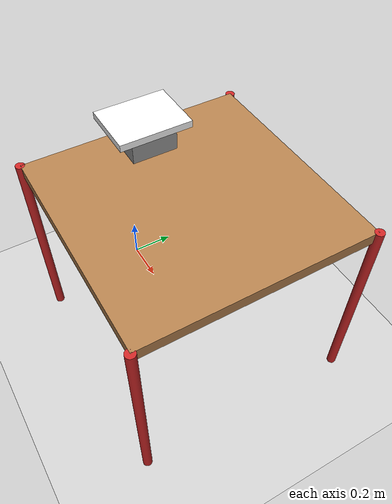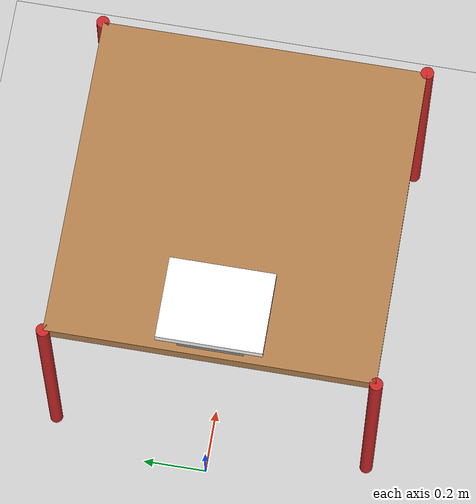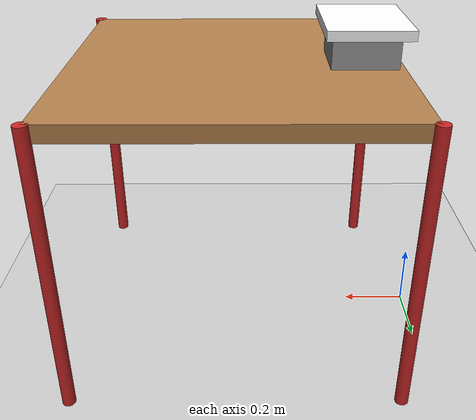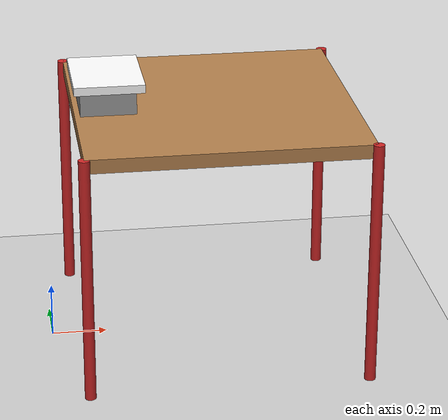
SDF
<sdf version="1.6">
 <world name="default">
  <light name="sun" type="directional">
   <pose>0 0 10 0 -0 0</pose>
   <diffuse>0.8 0.8 0.8 1</diffuse>
   <specular>0.1 0.1 0.1 1</specular>
   <attenuation>
    <range>1000</range>
    <constant>0.9</constant>
    <linear>0.01</linear>
    <quadratic>0.001</quadratic>
   </attenuation>
   <direction>-0.5 0.5 -1</direction>
  </light>
  <model name="ground_plane">
   <static>1</static>
   <link name="link">
    <collision name="collision">
     <geometry><plane><normal>0 0 1</normal><size>100 100</size></plane></geometry>
     <surface><friction><ode><mu>100</mu><mu2>50</mu2></ode></friction></surface>
    </collision>
    <visual name="visual">
     <cast_shadows>0</cast_shadows>
     <geometry><plane><normal>0 0 1</normal><size>100 100</size></plane></geometry>
     <material>
      <script><uri>file://media/materials/scripts/gazebo.material</uri><name>Gazebo/Grey</name></script>
     </material>
    </visual>
   </link>
  </model>
  <gravity>0 0 -9.8</gravity>
  <magnetic_field>6e-06 2.3e-05 -4.2e-05</magnetic_field>
  <atmosphere type="adiabatic"/>
  <physics name="default_physics" default="0" type="ode">
   <max_step_size>0.001</max_step_size>
   <real_time_factor>1</real_time_factor>
   <real_time_update_rate>1000</real_time_update_rate>
  </physics>
  <scene><ambient>0.4 0.4 0.4 1</ambient><background>0.7 0.7 0.7 1</background><shadows>1</shadows></scene>
  <spherical_coordinates>
   <surface_model>EARTH_WGS84</surface_model>
   <latitude_deg>0</latitude_deg>
   <longitude_deg>0</longitude_deg>
   <elevation>0</elevation>
   <heading_deg>0</heading_deg>
  </spherical_coordinates>
  <model name="table_model">
   <link name="table_top_link">
    <inertial>
     <pose>0.8 0 0.535 0 -0 0</pose>
     <mass>50</mass>
     <inertia><ixx>12.845</ixx><ixy>0</ixy><ixz>0</ixz><iyy>12.845</iyy><iyz>0</iyz><izz>21.04</izz></inertia>
    </inertial>
    <collision name="table_top_link_collision">
     <pose>0.8 0 0.875 0 -0 0</pose>
     <geometry><box><size>1 1 0.05</size></box></geometry>
     <surface>
      <contact><ode><kp>1e+06</kp><kd>1</kd></ode></contact>
      <friction><ode><mu>50</mu><mu2>50</mu2></ode></friction>
     </surface>
    </collision>
    <collision name="table_top_link_fixed_joint_lump__leg1_link_collision_1">
     <pose>1.3 0.5 0.45 0 -0 0</pose>
     <geometry><cylinder><length>0.9</length><radius>0.02</radius></cylinder></geometry>
     <surface>
      <contact><ode><kp>1e+07</kp><kd>1</kd></ode></contact>
      <friction><ode><mu>1000</mu><mu2>1000</mu2></ode></friction>
     </surface>
    </collision>
    <collision name="table_top_link_fixed_joint_lump__leg2_link_collision_2">
     <pose>0.3 0.5 0.45 0 -0 0</pose>
     <geometry><cylinder><length>0.9</length><radius>0.02</radius></cylinder></geometry>
     <surface>
      <contact><ode><kp>1e+07</kp><kd>1</kd></ode></contact>
      <friction><ode><mu>1000</mu><mu2>1000</mu2></ode></friction>
     </surface>
    </collision>
    <collision name="table_top_link_fixed_joint_lump__leg3_link_collision_3">
     <pose>1.3 -0.5 0.45 0 -0 0</pose>
     <geometry><cylinder><length>0.9</length><radius>0.02</radius></cylinder></geometry>
     <surface>
      <contact><ode><kp>1e+07</kp><kd>1</kd></ode></contact>
      <friction><ode><mu>1000</mu><mu2>1000</mu2></ode></friction>
     </surface>
    </collision>
    <collision name="table_top_link_fixed_joint_lump__leg4_link_collision_4">
     <pose>0.3 -0.5 0.45 0 -0 0</pose>
     <geometry><cylinder><length>0.9</length><radius>0.02</radius></cylinder></geometry>
     <surface>
      <contact><ode><kp>1e+07</kp><kd>1</kd></ode></contact>
      <friction><ode><mu>1000</mu><mu2>1000</mu2></ode></friction>
     </surface>
    </collision>
    <visual name="table_top_link_visual">
     <pose>0.8 0 0.875 0 -0 0</pose>
     <geometry><box><size>1 1 0.05</size></box></geometry>
     <material>
      <script><name>Gazebo/Wood</name><uri>file://media/materials/scripts/gazebo.material</uri></script>
     </material>
    </visual>
    <visual name="table_top_link_fixed_joint_lump__leg1_link_visual_1">
     <pose>1.3 0.5 0.45 0 -0 0</pose>
     <geometry><cylinder><length>0.9</length><radius>0.02</radius></cylinder></geometry>
     <material>
      <script><name>Gazebo/Red</name><uri>file://media/materials/scripts/gazebo.material</uri></script>
     </material>
    </visual>
    <visual name="table_top_link_fixed_joint_lump__leg2_link_visual_2">
     <pose>0.3 0.5 0.45 0 -0 0</pose>
     <geometry><cylinder><length>0.9</length><radius>0.02</radius></cylinder></geometry>
     <material>
      <script><name>Gazebo/Red</name><uri>file://media/materials/scripts/gazebo.material</uri></script>
     </material>
    </visual>
    <visual name="table_top_link_fixed_joint_lump__leg3_link_visual_3">
     <pose>1.3 -0.5 0.45 0 -0 0</pose>
     <geometry><cylinder><length>0.9</length><radius>0.02</radius></cylinder></geometry>
     <material>
      <script><name>Gazebo/Red</name><uri>file://media/materials/scripts/gazebo.material</uri></script>
     </material>
    </visual>
    <visual name="table_top_link_fixed_joint_lump__leg4_link_visual_4">
     <pose>0.3 -0.5 0.45 0 -0 0</pose>
     <geometry><cylinder><length>0.9</length><radius>0.02</radius></cylinder></geometry>
     <material>
      <script><name>Gazebo/Red</name><uri>file://media/materials/scripts/gazebo.material</uri></script>
     </material>
    </visual>
    <self_collide>1</self_collide>
   </link>
   <static>1</static>
   <pose>-0.2 0 0 0 -0 0</pose>
  </model>
  <model name="box3_0_0">
   <link name="link">
    <inertial>
     <mass>5</mass>
     <inertia><ixx>0.066667</ixx><ixy>0</ixy><ixz>0</ixz><iyy>0.136667</iyy><iyz>0</iyz><izz>0.21</izz></inertia>
    </inertial>
    <visual name="visual">
     <geometry><box><size>0.2 0.2 0.1</size></box></geometry>
     <material>
      <script><name>Gazebo/Grey</name><uri>file://media/materials/scripts/gazebo.material</uri></script>
      <ambient>0.3 0.3 0.3 1</ambient>
      <diffuse>0.7 0.7 0.7 1</diffuse>
      <specular>0.01 0.01 0.01 1</specular>
      <emissive>0 0.5 0 1</emissive>
      <shader type="vertex"><normal_map>__default__</normal_map></shader>
     </material>
    </visual>
    <collision name="collision">
     <geometry><box><size>0.2 0.2 0.1</size></box></geometry>
     <surface>
      <friction>
       <ode><mu>1</mu><mu2>1</mu2><fdir1>0 0 0</fdir1><slip1>0</slip1><slip2>0</slip2></ode>
       <torsional>
        <coefficient>1</coefficient>
        <patch_radius>0</patch_radius>
        <surface_radius>0</surface_radius>
        <use_patch_radius>1</use_patch_radius>
        <ode><slip>0</slip></ode>
       </torsional>
      </friction>
      <bounce><restitution_coefficient>0</restitution_coefficient><threshold>1e+06</threshold></bounce>
      <contact>
       <collide_without_contact>0</collide_without_contact>
       <collide_without_contact_bitmask>1</collide_without_contact_bitmask>
       <collide_bitmask>1</collide_bitmask>
       <ode>
        <soft_cfm>0</soft_cfm>
        <soft_erp>0.2</soft_erp>
        <kp>1e+13</kp>
        <kd>1</kd>
        <max_vel>0.01</max_vel>
        <min_depth>0</min_depth>
       </ode>
       <bullet>
        <split_impulse>1</split_impulse>
        <split_impulse_penetration_threshold>-0.01</split_impulse_penetration_threshold>
        <soft_cfm>0</soft_cfm>
        <soft_erp>0.2</soft_erp>
        <kp>1e+13</kp>
        <kd>1</kd>
       </bullet>
      </contact>
     </surface>
    </collision>
   </link>
   <static>0</static>
   <pose>0.22 -0.000198 0.949983 1e-06 -0 -0.002394</pose>
  </model>
  <model name="mark_0_0">
   <link name="link">
    <pose>-0 0 0.115 -0 -0 -0</pose>
    <inertial>
     <mass>0.39</mass>
     <inertia><ixx>0.00058</ixx><ixy>0</ixy><ixz>0</ixz><iyy>0.00058</iyy><iyz>0</iyz><izz>0.00019</izz></inertia>
    </inertial>
    <visual name="visual">
     <geometry><box><size>0.25 0.32 0.03</size></box></geometry>
     <material>
      <script>
       <uri>model://mark/materials/scripts</uri>
       <uri>model://mark/materials/textures</uri>
       <name>Mark/Diffuse</name>
      </script>
      <ambient>1 1 1 1</ambient>
      <diffuse>1 1 1 1</diffuse>
      <specular>0 0 0 1</specular>
      <emissive>0 0 0 1</emissive>
      <shader type="vertex"><normal_map>__default__</normal_map></shader>
     </material>
    </visual>
    <collision name="collision">
     <geometry><box><size>0.25 0.32 0.03</size></box></geometry>
     <surface>
      <friction>
       <ode><mu>1</mu><mu2>1</mu2><fdir1>0 0 0</fdir1><slip1>0</slip1><slip2>0</slip2></ode>
       <torsional>
        <coefficient>1</coefficient>
        <patch_radius>0</patch_radius>
        <surface_radius>0</surface_radius>
        <use_patch_radius>1</use_patch_radius>
        <ode><slip>0</slip></ode>
       </torsional>
      </friction>
      <bounce><restitution_coefficient>0</restitution_coefficient><threshold>1e+06</threshold></bounce>
      <contact>
       <collide_without_contact>0</collide_without_contact>
       <collide_without_contact_bitmask>1</collide_without_contact_bitmask>
       <collide_bitmask>1</collide_bitmask>
       <ode>
        <soft_cfm>0</soft_cfm>
        <soft_erp>0.2</soft_erp>
        <kp>1e+13</kp>
        <kd>1</kd>
        <max_vel>0.01</max_vel>
        <min_depth>0</min_depth>
       </ode>
       <bullet>
        <split_impulse>1</split_impulse>
        <split_impulse_penetration_threshold>-0.01</split_impulse_penetration_threshold>
        <soft_cfm>0</soft_cfm>
        <soft_erp>0.2</soft_erp>
        <kp>1e+13</kp>
        <kd>1</kd>
       </bullet>
      </contact>
     </surface>
    </collision>
   </link>
   <static>0</static>
   <pose>0.219995 -0.000821 0.899975 -7.9e-05 0 0.000143</pose>
  </model>
 </world>
</sdf>
